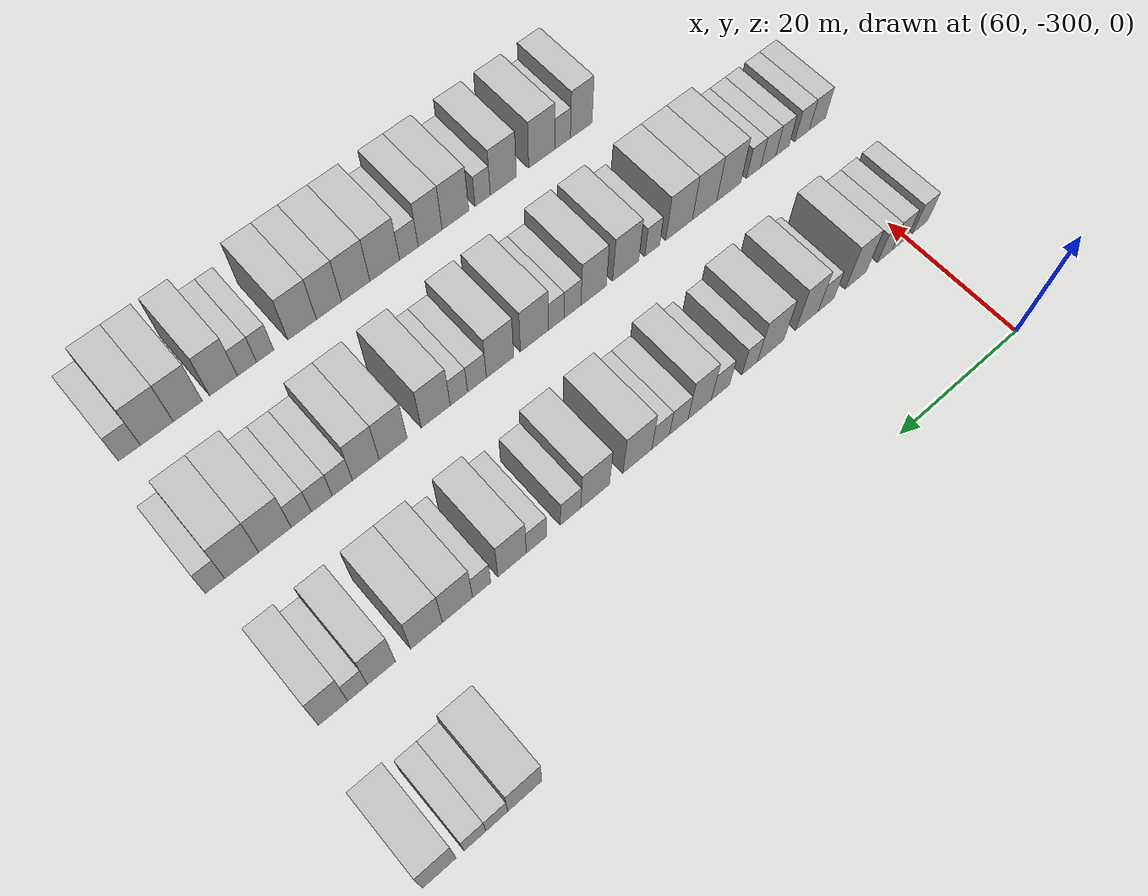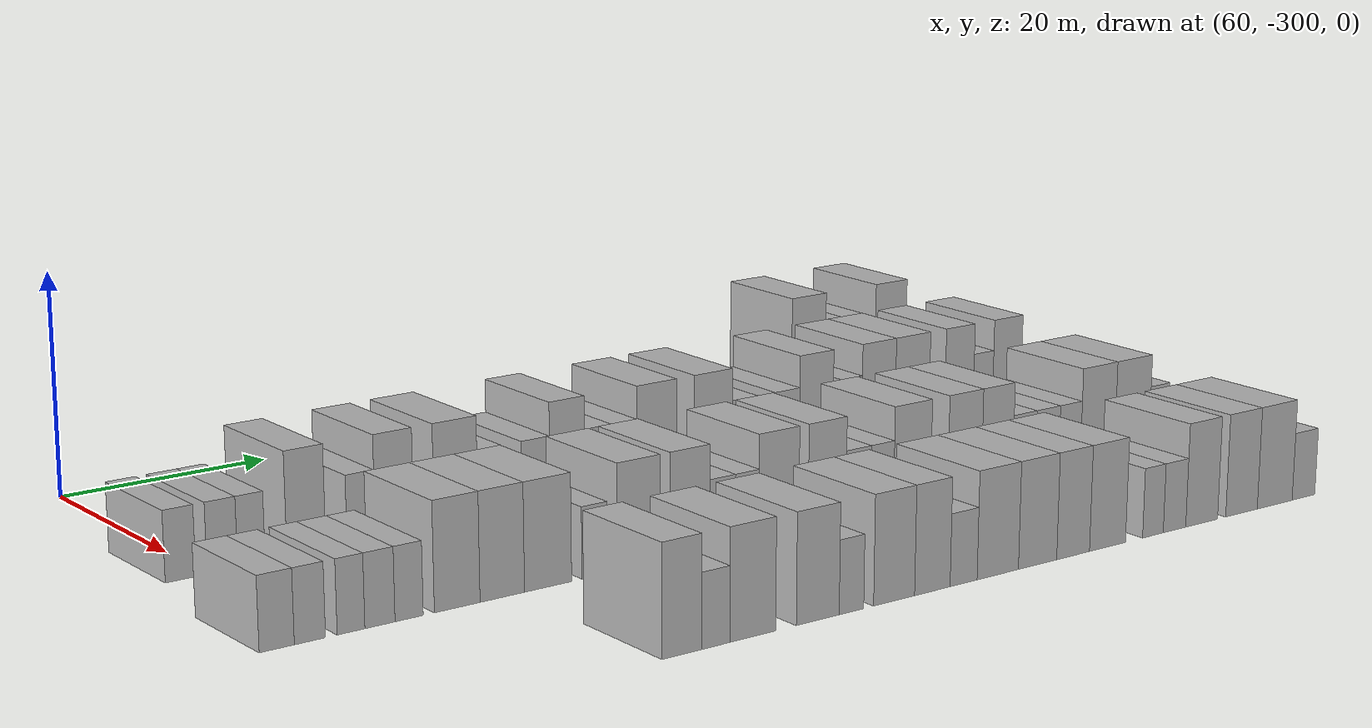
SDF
<sdf version="1.6">
 <world name="default">
  <model name="building_379">
   <static>1</static>
   <pose>63.0000 -222.6140 0 0.000000 0.000000 0.000000</pose>
   <link name="link">
    <pose>0 0 4.50 0 0 0</pose>
    <collision name="collision"><geometry><box><size>10.0000 4.3673 9.0000</size></box></geometry></collision>
    <visual name="visual">
     <cast_shadows>0</cast_shadows>
     <geometry><box><size>10.0000 4.3673 9.0000</size></box></geometry>
     <material>
      <script>
       <uri>model://HANNAS_wall/materials/scripts</uri>
       <uri>model://HANNAS_wall/materials/textures</uri>
       <name>vrc/HANNAS_wall</name>
      </script>
     </material>
    </visual>
   </link>
  </model>
  <model name="building_380">
   <static>1</static>
   <pose>63.0000 -219.0402 0 0.000000 0.000000 0.000000</pose>
   <link name="link">
    <pose>0 0 3.00 0 0 0</pose>
    <collision name="collision"><geometry><box><size>10.0000 2.7804 6.0000</size></box></geometry></collision>
    <visual name="visual">
     <cast_shadows>0</cast_shadows>
     <geometry><box><size>10.0000 2.7804 6.0000</size></box></geometry>
     <material>
      <script>
       <uri>model://HANNAS_wall/materials/scripts</uri>
       <uri>model://HANNAS_wall/materials/textures</uri>
       <name>vrc/HANNAS_wall</name>
      </script>
     </material>
    </visual>
   </link>
  </model>
  <model name="building_381">
   <static>1</static>
   <pose>63.0000 -216.2629 0 0.000000 0.000000 0.000000</pose>
   <link name="link">
    <pose>0 0 3.00 0 0 0</pose>
    <collision name="collision"><geometry><box><size>10.0000 2.7740 6.0000</size></box></geometry></collision>
    <visual name="visual">
     <cast_shadows>0</cast_shadows>
     <geometry><box><size>10.0000 2.7740 6.0000</size></box></geometry>
     <material>
      <script>
       <uri>model://HANNAS_wall/materials/scripts</uri>
       <uri>model://HANNAS_wall/materials/textures</uri>
       <name>vrc/HANNAS_wall</name>
      </script>
     </material>
    </visual>
   </link>
  </model>
  <model name="building_382">
   <static>1</static>
   <pose>63.0000 -211.8053 0 0.000000 0.000000 0.000000</pose>
   <link name="link">
    <pose>0 0 4.50 0 0 0</pose>
    <collision name="collision"><geometry><box><size>10.0000 4.1413 9.0000</size></box></geometry></collision>
    <visual name="visual">
     <cast_shadows>0</cast_shadows>
     <geometry><box><size>10.0000 4.1413 9.0000</size></box></geometry>
     <material>
      <script>
       <uri>model://HANNAS_wall/materials/scripts</uri>
       <uri>model://HANNAS_wall/materials/textures</uri>
       <name>vrc/HANNAS_wall</name>
      </script>
     </material>
    </visual>
   </link>
  </model>
  <model name="building_542">
   <static>1</static>
   <pose>82.0000 -302.3694 0 0.000000 0.000000 0.000000</pose>
   <link name="link">
    <pose>0 0 3.00 0 0 0</pose>
    <collision name="collision"><geometry><box><size>10.0000 2.7032 6.0000</size></box></geometry></collision>
    <visual name="visual">
     <cast_shadows>0</cast_shadows>
     <geometry><box><size>10.0000 2.7032 6.0000</size></box></geometry>
     <material>
      <script>
       <uri>model://HANNAS_wall/materials/scripts</uri>
       <uri>model://HANNAS_wall/materials/textures</uri>
       <name>vrc/HANNAS_wall</name>
      </script>
     </material>
    </visual>
   </link>
  </model>
  <model name="building_543">
   <static>1</static>
   <pose>82.0000 -298.6455 0 0.000000 0.000000 0.000000</pose>
   <link name="link">
    <pose>0 0 3.00 0 0 0</pose>
    <collision name="collision"><geometry><box><size>10.0000 2.7447 6.0000</size></box></geometry></collision>
    <visual name="visual">
     <cast_shadows>0</cast_shadows>
     <geometry><box><size>10.0000 2.7447 6.0000</size></box></geometry>
     <material>
      <script>
       <uri>model://HANNAS_wall/materials/scripts</uri>
       <uri>model://HANNAS_wall/materials/textures</uri>
       <name>vrc/HANNAS_wall</name>
      </script>
     </material>
    </visual>
   </link>
  </model>
  <model name="building_544">
   <static>1</static>
   <pose>82.0000 -296.0211 0 0.000000 0.000000 0.000000</pose>
   <link name="link">
    <pose>0 0 3.00 0 0 0</pose>
    <collision name="collision"><geometry><box><size>10.0000 2.5041 6.0000</size></box></geometry></collision>
    <visual name="visual">
     <cast_shadows>0</cast_shadows>
     <geometry><box><size>10.0000 2.5041 6.0000</size></box></geometry>
     <material>
      <script>
       <uri>model://HANNAS_wall/materials/scripts</uri>
       <uri>model://HANNAS_wall/materials/textures</uri>
       <name>vrc/HANNAS_wall</name>
      </script>
     </material>
    </visual>
   </link>
  </model>
  <model name="building_545">
   <static>1</static>
   <pose>82.0000 -290.9551 0 0.000000 0.000000 0.000000</pose>
   <link name="link">
    <pose>0 0 4.50 0 0 0</pose>
    <collision name="collision"><geometry><box><size>10.0000 3.6278 9.0000</size></box></geometry></collision>
    <visual name="visual">
     <cast_shadows>0</cast_shadows>
     <geometry><box><size>10.0000 3.6278 9.0000</size></box></geometry>
     <material>
      <script>
       <uri>model://HANNAS_wall/materials/scripts</uri>
       <uri>model://HANNAS_wall/materials/textures</uri>
       <name>vrc/HANNAS_wall</name>
      </script>
     </material>
    </visual>
   </link>
  </model>
  <model name="building_546">
   <static>1</static>
   <pose>82.0000 -285.7852 0 0.000000 0.000000 0.000000</pose>
   <link name="link">
    <pose>0 0 3.00 0 0 0</pose>
    <collision name="collision"><geometry><box><size>10.0000 2.7119 6.0000</size></box></geometry></collision>
    <visual name="visual">
     <cast_shadows>0</cast_shadows>
     <geometry><box><size>10.0000 2.7119 6.0000</size></box></geometry>
     <material>
      <script>
       <uri>model://HANNAS_wall/materials/scripts</uri>
       <uri>model://HANNAS_wall/materials/textures</uri>
       <name>vrc/HANNAS_wall</name>
      </script>
     </material>
    </visual>
   </link>
  </model>
  <model name="building_547">
   <static>1</static>
   <pose>82.0000 -282.5600 0 0.000000 0.000000 0.000000</pose>
   <link name="link">
    <pose>0 0 4.50 0 0 0</pose>
    <collision name="collision"><geometry><box><size>10.0000 3.7386 9.0000</size></box></geometry></collision>
    <visual name="visual">
     <cast_shadows>0</cast_shadows>
     <geometry><box><size>10.0000 3.7386 9.0000</size></box></geometry>
     <material>
      <script>
       <uri>model://HANNAS_wall/materials/scripts</uri>
       <uri>model://HANNAS_wall/materials/textures</uri>
       <name>vrc/HANNAS_wall</name>
      </script>
     </material>
    </visual>
   </link>
  </model>
  <model name="building_548">
   <static>1</static>
   <pose>82.0000 -276.5096 0 0.000000 0.000000 0.000000</pose>
   <link name="link">
    <pose>0 0 4.50 0 0 0</pose>
    <collision name="collision"><geometry><box><size>10.0000 4.3623 9.0000</size></box></geometry></collision>
    <visual name="visual">
     <cast_shadows>0</cast_shadows>
     <geometry><box><size>10.0000 4.3623 9.0000</size></box></geometry>
     <material>
      <script>
       <uri>model://HANNAS_wall/materials/scripts</uri>
       <uri>model://HANNAS_wall/materials/textures</uri>
       <name>vrc/HANNAS_wall</name>
      </script>
     </material>
    </visual>
   </link>
  </model>
  <model name="building_549">
   <static>1</static>
   <pose>82.0000 -273.0817 0 0.000000 0.000000 0.000000</pose>
   <link name="link">
    <pose>0 0 3.00 0 0 0</pose>
    <collision name="collision"><geometry><box><size>10.0000 2.4935 6.0000</size></box></geometry></collision>
    <visual name="visual">
     <cast_shadows>0</cast_shadows>
     <geometry><box><size>10.0000 2.4935 6.0000</size></box></geometry>
     <material>
      <script>
       <uri>model://HANNAS_wall/materials/scripts</uri>
       <uri>model://HANNAS_wall/materials/textures</uri>
       <name>vrc/HANNAS_wall</name>
      </script>
     </material>
    </visual>
   </link>
  </model>
  <model name="building_550">
   <static>1</static>
   <pose>82.0000 -268.3754 0 0.000000 0.000000 0.000000</pose>
   <link name="link">
    <pose>0 0 3.00 0 0 0</pose>
    <collision name="collision"><geometry><box><size>10.0000 2.9191 6.0000</size></box></geometry></collision>
    <visual name="visual">
     <cast_shadows>0</cast_shadows>
     <geometry><box><size>10.0000 2.9191 6.0000</size></box></geometry>
     <material>
      <script>
       <uri>model://HANNAS_wall/materials/scripts</uri>
       <uri>model://HANNAS_wall/materials/textures</uri>
       <name>vrc/HANNAS_wall</name>
      </script>
     </material>
    </visual>
   </link>
  </model>
  <model name="building_551">
   <static>1</static>
   <pose>82.0000 -265.0829 0 0.000000 0.000000 0.000000</pose>
   <link name="link">
    <pose>0 0 4.50 0 0 0</pose>
    <collision name="collision"><geometry><box><size>10.0000 3.6659 9.0000</size></box></geometry></collision>
    <visual name="visual">
     <cast_shadows>0</cast_shadows>
     <geometry><box><size>10.0000 3.6659 9.0000</size></box></geometry>
     <material>
      <script>
       <uri>model://HANNAS_wall/materials/scripts</uri>
       <uri>model://HANNAS_wall/materials/textures</uri>
       <name>vrc/HANNAS_wall</name>
      </script>
     </material>
    </visual>
   </link>
  </model>
  <model name="building_552">
   <static>1</static>
   <pose>82.0000 -261.8124 0 0.000000 0.000000 0.000000</pose>
   <link name="link">
    <pose>0 0 3.00 0 0 0</pose>
    <collision name="collision"><geometry><box><size>10.0000 2.8752 6.0000</size></box></geometry></collision>
    <visual name="visual">
     <cast_shadows>0</cast_shadows>
     <geometry><box><size>10.0000 2.8752 6.0000</size></box></geometry>
     <material>
      <script>
       <uri>model://HANNAS_wall/materials/scripts</uri>
       <uri>model://HANNAS_wall/materials/textures</uri>
       <name>vrc/HANNAS_wall</name>
      </script>
     </material>
    </visual>
   </link>
  </model>
  <model name="building_553">
   <static>1</static>
   <pose>82.0000 -259.0061 0 0.000000 0.000000 0.000000</pose>
   <link name="link">
    <pose>0 0 3.00 0 0 0</pose>
    <collision name="collision"><geometry><box><size>10.0000 2.7374 6.0000</size></box></geometry></collision>
    <visual name="visual">
     <cast_shadows>0</cast_shadows>
     <geometry><box><size>10.0000 2.7374 6.0000</size></box></geometry>
     <material>
      <script>
       <uri>model://HANNAS_wall/materials/scripts</uri>
       <uri>model://HANNAS_wall/materials/textures</uri>
       <name>vrc/HANNAS_wall</name>
      </script>
     </material>
    </visual>
   </link>
  </model>
  <model name="building_554">
   <static>1</static>
   <pose>82.0000 -255.4521 0 0.000000 0.000000 0.000000</pose>
   <link name="link">
    <pose>0 0 4.50 0 0 0</pose>
    <collision name="collision"><geometry><box><size>10.0000 4.3705 9.0000</size></box></geometry></collision>
    <visual name="visual">
     <cast_shadows>0</cast_shadows>
     <geometry><box><size>10.0000 4.3705 9.0000</size></box></geometry>
     <material>
      <script>
       <uri>model://HANNAS_wall/materials/scripts</uri>
       <uri>model://HANNAS_wall/materials/textures</uri>
       <name>vrc/HANNAS_wall</name>
      </script>
     </material>
    </visual>
   </link>
  </model>
  <model name="building_555">
   <static>1</static>
   <pose>82.0000 -249.1358 0 0.000000 0.000000 0.000000</pose>
   <link name="link">
    <pose>0 0 4.50 0 0 0</pose>
    <collision name="collision"><geometry><box><size>10.0000 4.2620 9.0000</size></box></geometry></collision>
    <visual name="visual">
     <cast_shadows>0</cast_shadows>
     <geometry><box><size>10.0000 4.2620 9.0000</size></box></geometry>
     <material>
      <script>
       <uri>model://HANNAS_wall/materials/scripts</uri>
       <uri>model://HANNAS_wall/materials/textures</uri>
       <name>vrc/HANNAS_wall</name>
      </script>
     </material>
    </visual>
   </link>
  </model>
  <model name="building_556">
   <static>1</static>
   <pose>82.0000 -245.5286 0 0.000000 0.000000 0.000000</pose>
   <link name="link">
    <pose>0 0 3.00 0 0 0</pose>
    <collision name="collision"><geometry><box><size>10.0000 2.9524 6.0000</size></box></geometry></collision>
    <visual name="visual">
     <cast_shadows>0</cast_shadows>
     <geometry><box><size>10.0000 2.9524 6.0000</size></box></geometry>
     <material>
      <script>
       <uri>model://HANNAS_wall/materials/scripts</uri>
       <uri>model://HANNAS_wall/materials/textures</uri>
       <name>vrc/HANNAS_wall</name>
      </script>
     </material>
    </visual>
   </link>
  </model>
  <model name="building_557">
   <static>1</static>
   <pose>82.0000 -240.6181 0 0.000000 0.000000 0.000000</pose>
   <link name="link">
    <pose>0 0 3.00 0 0 0</pose>
    <collision name="collision"><geometry><box><size>10.0000 2.8685 6.0000</size></box></geometry></collision>
    <visual name="visual">
     <cast_shadows>0</cast_shadows>
     <geometry><box><size>10.0000 2.8685 6.0000</size></box></geometry>
     <material>
      <script>
       <uri>model://HANNAS_wall/materials/scripts</uri>
       <uri>model://HANNAS_wall/materials/textures</uri>
       <name>vrc/HANNAS_wall</name>
      </script>
     </material>
    </visual>
   </link>
  </model>
  <model name="building_558">
   <static>1</static>
   <pose>82.0000 -237.1951 0 0.000000 0.000000 0.000000</pose>
   <link name="link">
    <pose>0 0 4.50 0 0 0</pose>
    <collision name="collision"><geometry><box><size>10.0000 3.9776 9.0000</size></box></geometry></collision>
    <visual name="visual">
     <cast_shadows>0</cast_shadows>
     <geometry><box><size>10.0000 3.9776 9.0000</size></box></geometry>
     <material>
      <script>
       <uri>model://HANNAS_wall/materials/scripts</uri>
       <uri>model://HANNAS_wall/materials/textures</uri>
       <name>vrc/HANNAS_wall</name>
      </script>
     </material>
    </visual>
   </link>
  </model>
  <model name="building_559">
   <static>1</static>
   <pose>82.0000 -232.9572 0 0.000000 0.000000 0.000000</pose>
   <link name="link">
    <pose>0 0 3.00 0 0 0</pose>
    <collision name="collision"><geometry><box><size>10.0000 2.4983 6.0000</size></box></geometry></collision>
    <visual name="visual">
     <cast_shadows>0</cast_shadows>
     <geometry><box><size>10.0000 2.4983 6.0000</size></box></geometry>
     <material>
      <script>
       <uri>model://HANNAS_wall/materials/scripts</uri>
       <uri>model://HANNAS_wall/materials/textures</uri>
       <name>vrc/HANNAS_wall</name>
      </script>
     </material>
    </visual>
   </link>
  </model>
  <model name="building_560">
   <static>1</static>
   <pose>82.0000 -229.6564 0 0.000000 0.000000 0.000000</pose>
   <link name="link">
    <pose>0 0 4.50 0 0 0</pose>
    <collision name="collision"><geometry><box><size>10.0000 4.1033 9.0000</size></box></geometry></collision>
    <visual name="visual">
     <cast_shadows>0</cast_shadows>
     <geometry><box><size>10.0000 4.1033 9.0000</size></box></geometry>
     <material>
      <script>
       <uri>model://HANNAS_wall/materials/scripts</uri>
       <uri>model://HANNAS_wall/materials/textures</uri>
       <name>vrc/HANNAS_wall</name>
      </script>
     </material>
    </visual>
   </link>
  </model>
  <model name="building_561">
   <static>1</static>
   <pose>82.0000 -225.4766 0 0.000000 0.000000 0.000000</pose>
   <link name="link">
    <pose>0 0 4.50 0 0 0</pose>
    <collision name="collision"><geometry><box><size>10.0000 4.2562 9.0000</size></box></geometry></collision>
    <visual name="visual">
     <cast_shadows>0</cast_shadows>
     <geometry><box><size>10.0000 4.2562 9.0000</size></box></geometry>
     <material>
      <script>
       <uri>model://HANNAS_wall/materials/scripts</uri>
       <uri>model://HANNAS_wall/materials/textures</uri>
       <name>vrc/HANNAS_wall</name>
      </script>
     </material>
    </visual>
   </link>
  </model>
  <model name="building_562">
   <static>1</static>
   <pose>82.0000 -219.5210 0 0.000000 0.000000 0.000000</pose>
   <link name="link">
    <pose>0 0 4.50 0 0 0</pose>
    <collision name="collision"><geometry><box><size>10.0000 3.6550 9.0000</size></box></geometry></collision>
    <visual name="visual">
     <cast_shadows>0</cast_shadows>
     <geometry><box><size>10.0000 3.6550 9.0000</size></box></geometry>
     <material>
      <script>
       <uri>model://HANNAS_wall/materials/scripts</uri>
       <uri>model://HANNAS_wall/materials/textures</uri>
       <name>vrc/HANNAS_wall</name>
      </script>
     </material>
    </visual>
   </link>
  </model>
  <model name="building_563">
   <static>1</static>
   <pose>82.0000 -216.4335 0 0.000000 0.000000 0.000000</pose>
   <link name="link">
    <pose>0 0 3.00 0 0 0</pose>
    <collision name="collision"><geometry><box><size>10.0000 2.5200 6.0000</size></box></geometry></collision>
    <visual name="visual">
     <cast_shadows>0</cast_shadows>
     <geometry><box><size>10.0000 2.5200 6.0000</size></box></geometry>
     <material>
      <script>
       <uri>model://HANNAS_wall/materials/scripts</uri>
       <uri>model://HANNAS_wall/materials/textures</uri>
       <name>vrc/HANNAS_wall</name>
      </script>
     </material>
    </visual>
   </link>
  </model>
  <model name="building_564">
   <static>1</static>
   <pose>82.0000 -213.3101 0 0.000000 0.000000 0.000000</pose>
   <link name="link">
    <pose>0 0 4.50 0 0 0</pose>
    <collision name="collision"><geometry><box><size>10.0000 3.7269 9.0000</size></box></geometry></collision>
    <visual name="visual">
     <cast_shadows>0</cast_shadows>
     <geometry><box><size>10.0000 3.7269 9.0000</size></box></geometry>
     <material>
      <script>
       <uri>model://HANNAS_wall/materials/scripts</uri>
       <uri>model://HANNAS_wall/materials/textures</uri>
       <name>vrc/HANNAS_wall</name>
      </script>
     </material>
    </visual>
   </link>
  </model>
  <model name="building_726">
   <static>1</static>
   <pose>101.0000 -304.2935 0 0.000000 0.000000 0.000000</pose>
   <link name="link">
    <pose>0 0 3.00 0 0 0</pose>
    <collision name="collision"><geometry><box><size>10.0000 2.9528 6.0000</size></box></geometry></collision>
    <visual name="visual">
     <cast_shadows>0</cast_shadows>
     <geometry><box><size>10.0000 2.9528 6.0000</size></box></geometry>
     <material>
      <script>
       <uri>model://HANNAS_wall/materials/scripts</uri>
       <uri>model://HANNAS_wall/materials/textures</uri>
       <name>vrc/HANNAS_wall</name>
      </script>
     </material>
    </visual>
   </link>
  </model>
  <model name="building_727">
   <static>1</static>
   <pose>101.0000 -301.4891 0 0.000000 0.000000 0.000000</pose>
   <link name="link">
    <pose>0 0 3.00 0 0 0</pose>
    <collision name="collision"><geometry><box><size>10.0000 2.6559 6.0000</size></box></geometry></collision>
    <visual name="visual">
     <cast_shadows>0</cast_shadows>
     <geometry><box><size>10.0000 2.6559 6.0000</size></box></geometry>
     <material>
      <script>
       <uri>model://HANNAS_wall/materials/scripts</uri>
       <uri>model://HANNAS_wall/materials/textures</uri>
       <name>vrc/HANNAS_wall</name>
      </script>
     </material>
    </visual>
   </link>
  </model>
  <model name="building_728">
   <static>1</static>
   <pose>101.0000 -297.9579 0 0.000000 0.000000 0.000000</pose>
   <link name="link">
    <pose>0 0 3.00 0 0 0</pose>
    <collision name="collision"><geometry><box><size>10.0000 2.4065 6.0000</size></box></geometry></collision>
    <visual name="visual">
     <cast_shadows>0</cast_shadows>
     <geometry><box><size>10.0000 2.4065 6.0000</size></box></geometry>
     <material>
      <script>
       <uri>model://HANNAS_wall/materials/scripts</uri>
       <uri>model://HANNAS_wall/materials/textures</uri>
       <name>vrc/HANNAS_wall</name>
      </script>
     </material>
    </visual>
   </link>
  </model>
  <model name="building_729">
   <static>1</static>
   <pose>101.0000 -295.4297 0 0.000000 0.000000 0.000000</pose>
   <link name="link">
    <pose>0 0 3.00 0 0 0</pose>
    <collision name="collision"><geometry><box><size>10.0000 2.6500 6.0000</size></box></geometry></collision>
    <visual name="visual">
     <cast_shadows>0</cast_shadows>
     <geometry><box><size>10.0000 2.6500 6.0000</size></box></geometry>
     <material>
      <script>
       <uri>model://HANNAS_wall/materials/scripts</uri>
       <uri>model://HANNAS_wall/materials/textures</uri>
       <name>vrc/HANNAS_wall</name>
      </script>
     </material>
    </visual>
   </link>
  </model>
  <model name="building_730">
   <static>1</static>
   <pose>101.0000 -292.8492 0 0.000000 0.000000 0.000000</pose>
   <link name="link">
    <pose>0 0 3.00 0 0 0</pose>
    <collision name="collision"><geometry><box><size>10.0000 2.5109 6.0000</size></box></geometry></collision>
    <visual name="visual">
     <cast_shadows>0</cast_shadows>
     <geometry><box><size>10.0000 2.5109 6.0000</size></box></geometry>
     <material>
      <script>
       <uri>model://HANNAS_wall/materials/scripts</uri>
       <uri>model://HANNAS_wall/materials/textures</uri>
       <name>vrc/HANNAS_wall</name>
      </script>
     </material>
    </visual>
   </link>
  </model>
  <model name="building_731">
   <static>1</static>
   <pose>101.0000 -288.5113 0 0.000000 0.000000 0.000000</pose>
   <link name="link">
    <pose>0 0 4.50 0 0 0</pose>
    <collision name="collision"><geometry><box><size>10.0000 4.1648 9.0000</size></box></geometry></collision>
    <visual name="visual">
     <cast_shadows>0</cast_shadows>
     <geometry><box><size>10.0000 4.1648 9.0000</size></box></geometry>
     <material>
      <script>
       <uri>model://HANNAS_wall/materials/scripts</uri>
       <uri>model://HANNAS_wall/materials/textures</uri>
       <name>vrc/HANNAS_wall</name>
      </script>
     </material>
    </visual>
   </link>
  </model>
  <model name="building_732">
   <static>1</static>
   <pose>101.0000 -284.3563 0 0.000000 0.000000 0.000000</pose>
   <link name="link">
    <pose>0 0 4.50 0 0 0</pose>
    <collision name="collision"><geometry><box><size>10.0000 4.1453 9.0000</size></box></geometry></collision>
    <visual name="visual">
     <cast_shadows>0</cast_shadows>
     <geometry><box><size>10.0000 4.1453 9.0000</size></box></geometry>
     <material>
      <script>
       <uri>model://HANNAS_wall/materials/scripts</uri>
       <uri>model://HANNAS_wall/materials/textures</uri>
       <name>vrc/HANNAS_wall</name>
      </script>
     </material>
    </visual>
   </link>
  </model>
  <model name="building_733">
   <static>1</static>
   <pose>101.0000 -280.0426 0 0.000000 0.000000 0.000000</pose>
   <link name="link">
    <pose>0 0 4.50 0 0 0</pose>
    <collision name="collision"><geometry><box><size>10.0000 4.4819 9.0000</size></box></geometry></collision>
    <visual name="visual">
     <cast_shadows>0</cast_shadows>
     <geometry><box><size>10.0000 4.4819 9.0000</size></box></geometry>
     <material>
      <script>
       <uri>model://HANNAS_wall/materials/scripts</uri>
       <uri>model://HANNAS_wall/materials/textures</uri>
       <name>vrc/HANNAS_wall</name>
      </script>
     </material>
    </visual>
   </link>
  </model>
  <model name="building_734">
   <static>1</static>
   <pose>101.0000 -275.5691 0 0.000000 0.000000 0.000000</pose>
   <link name="link">
    <pose>0 0 3.00 0 0 0</pose>
    <collision name="collision"><geometry><box><size>10.0000 2.4652 6.0000</size></box></geometry></collision>
    <visual name="visual">
     <cast_shadows>0</cast_shadows>
     <geometry><box><size>10.0000 2.4652 6.0000</size></box></geometry>
     <material>
      <script>
       <uri>model://HANNAS_wall/materials/scripts</uri>
       <uri>model://HANNAS_wall/materials/textures</uri>
       <name>vrc/HANNAS_wall</name>
      </script>
     </material>
    </visual>
   </link>
  </model>
  <model name="building_735">
   <static>1</static>
   <pose>101.0000 -271.2094 0 0.000000 0.000000 0.000000</pose>
   <link name="link">
    <pose>0 0 4.50 0 0 0</pose>
    <collision name="collision"><geometry><box><size>10.0000 4.2541 9.0000</size></box></geometry></collision>
    <visual name="visual">
     <cast_shadows>0</cast_shadows>
     <geometry><box><size>10.0000 4.2541 9.0000</size></box></geometry>
     <material>
      <script>
       <uri>model://HANNAS_wall/materials/scripts</uri>
       <uri>model://HANNAS_wall/materials/textures</uri>
       <name>vrc/HANNAS_wall</name>
      </script>
     </material>
    </visual>
   </link>
  </model>
  <model name="building_736">
   <static>1</static>
   <pose>101.0000 -266.0508 0 0.000000 0.000000 0.000000</pose>
   <link name="link">
    <pose>0 0 4.50 0 0 0</pose>
    <collision name="collision"><geometry><box><size>10.0000 4.0631 9.0000</size></box></geometry></collision>
    <visual name="visual">
     <cast_shadows>0</cast_shadows>
     <geometry><box><size>10.0000 4.0631 9.0000</size></box></geometry>
     <material>
      <script>
       <uri>model://HANNAS_wall/materials/scripts</uri>
       <uri>model://HANNAS_wall/materials/textures</uri>
       <name>vrc/HANNAS_wall</name>
      </script>
     </material>
    </visual>
   </link>
  </model>
  <model name="building_737">
   <static>1</static>
   <pose>101.0000 -262.7074 0 0.000000 0.000000 0.000000</pose>
   <link name="link">
    <pose>0 0 3.00 0 0 0</pose>
    <collision name="collision"><geometry><box><size>10.0000 2.6238 6.0000</size></box></geometry></collision>
    <visual name="visual">
     <cast_shadows>0</cast_shadows>
     <geometry><box><size>10.0000 2.6238 6.0000</size></box></geometry>
     <material>
      <script>
       <uri>model://HANNAS_wall/materials/scripts</uri>
       <uri>model://HANNAS_wall/materials/textures</uri>
       <name>vrc/HANNAS_wall</name>
      </script>
     </material>
    </visual>
   </link>
  </model>
  <model name="building_738">
   <static>1</static>
   <pose>101.0000 -260.1505 0 0.000000 0.000000 0.000000</pose>
   <link name="link">
    <pose>0 0 3.00 0 0 0</pose>
    <collision name="collision"><geometry><box><size>10.0000 2.4899 6.0000</size></box></geometry></collision>
    <visual name="visual">
     <cast_shadows>0</cast_shadows>
     <geometry><box><size>10.0000 2.4899 6.0000</size></box></geometry>
     <material>
      <script>
       <uri>model://HANNAS_wall/materials/scripts</uri>
       <uri>model://HANNAS_wall/materials/textures</uri>
       <name>vrc/HANNAS_wall</name>
      </script>
     </material>
    </visual>
   </link>
  </model>
  <model name="building_739">
   <static>1</static>
   <pose>101.0000 -256.7756 0 0.000000 0.000000 0.000000</pose>
   <link name="link">
    <pose>0 0 4.50 0 0 0</pose>
    <collision name="collision"><geometry><box><size>10.0000 4.2599 9.0000</size></box></geometry></collision>
    <visual name="visual">
     <cast_shadows>0</cast_shadows>
     <geometry><box><size>10.0000 4.2599 9.0000</size></box></geometry>
     <material>
      <script>
       <uri>model://HANNAS_wall/materials/scripts</uri>
       <uri>model://HANNAS_wall/materials/textures</uri>
       <name>vrc/HANNAS_wall</name>
      </script>
     </material>
    </visual>
   </link>
  </model>
  <model name="building_740">
   <static>1</static>
   <pose>101.0000 -251.5797 0 0.000000 0.000000 0.000000</pose>
   <link name="link">
    <pose>0 0 4.50 0 0 0</pose>
    <collision name="collision"><geometry><box><size>10.0000 4.1319 9.0000</size></box></geometry></collision>
    <visual name="visual">
     <cast_shadows>0</cast_shadows>
     <geometry><box><size>10.0000 4.1319 9.0000</size></box></geometry>
     <material>
      <script>
       <uri>model://HANNAS_wall/materials/scripts</uri>
       <uri>model://HANNAS_wall/materials/textures</uri>
       <name>vrc/HANNAS_wall</name>
      </script>
     </material>
    </visual>
   </link>
  </model>
  <model name="building_741">
   <static>1</static>
   <pose>101.0000 -248.1222 0 0.000000 0.000000 0.000000</pose>
   <link name="link">
    <pose>0 0 3.00 0 0 0</pose>
    <collision name="collision"><geometry><box><size>10.0000 2.7830 6.0000</size></box></geometry></collision>
    <visual name="visual">
     <cast_shadows>0</cast_shadows>
     <geometry><box><size>10.0000 2.7830 6.0000</size></box></geometry>
     <material>
      <script>
       <uri>model://HANNAS_wall/materials/scripts</uri>
       <uri>model://HANNAS_wall/materials/textures</uri>
       <name>vrc/HANNAS_wall</name>
      </script>
     </material>
    </visual>
   </link>
  </model>
  <model name="building_742">
   <static>1</static>
   <pose>101.0000 -245.4556 0 0.000000 0.000000 0.000000</pose>
   <link name="link">
    <pose>0 0 3.00 0 0 0</pose>
    <collision name="collision"><geometry><box><size>10.0000 2.5503 6.0000</size></box></geometry></collision>
    <visual name="visual">
     <cast_shadows>0</cast_shadows>
     <geometry><box><size>10.0000 2.5503 6.0000</size></box></geometry>
     <material>
      <script>
       <uri>model://HANNAS_wall/materials/scripts</uri>
       <uri>model://HANNAS_wall/materials/textures</uri>
       <name>vrc/HANNAS_wall</name>
      </script>
     </material>
    </visual>
   </link>
  </model>
  <model name="building_743">
   <static>1</static>
   <pose>101.0000 -242.0696 0 0.000000 0.000000 0.000000</pose>
   <link name="link">
    <pose>0 0 4.50 0 0 0</pose>
    <collision name="collision"><geometry><box><size>10.0000 4.2217 9.0000</size></box></geometry></collision>
    <visual name="visual">
     <cast_shadows>0</cast_shadows>
     <geometry><box><size>10.0000 4.2217 9.0000</size></box></geometry>
     <material>
      <script>
       <uri>model://HANNAS_wall/materials/scripts</uri>
       <uri>model://HANNAS_wall/materials/textures</uri>
       <name>vrc/HANNAS_wall</name>
      </script>
     </material>
    </visual>
   </link>
  </model>
  <model name="building_744">
   <static>1</static>
   <pose>101.0000 -235.9848 0 0.000000 0.000000 0.000000</pose>
   <link name="link">
    <pose>0 0 4.50 0 0 0</pose>
    <collision name="collision"><geometry><box><size>10.0000 3.9479 9.0000</size></box></geometry></collision>
    <visual name="visual">
     <cast_shadows>0</cast_shadows>
     <geometry><box><size>10.0000 3.9479 9.0000</size></box></geometry>
     <material>
      <script>
       <uri>model://HANNAS_wall/materials/scripts</uri>
       <uri>model://HANNAS_wall/materials/textures</uri>
       <name>vrc/HANNAS_wall</name>
      </script>
     </material>
    </visual>
   </link>
  </model>
  <model name="building_745">
   <static>1</static>
   <pose>101.0000 -232.1405 0 0.000000 0.000000 0.000000</pose>
   <link name="link">
    <pose>0 0 4.50 0 0 0</pose>
    <collision name="collision"><geometry><box><size>10.0000 3.7407 9.0000</size></box></geometry></collision>
    <visual name="visual">
     <cast_shadows>0</cast_shadows>
     <geometry><box><size>10.0000 3.7407 9.0000</size></box></geometry>
     <material>
      <script>
       <uri>model://HANNAS_wall/materials/scripts</uri>
       <uri>model://HANNAS_wall/materials/textures</uri>
       <name>vrc/HANNAS_wall</name>
      </script>
     </material>
    </visual>
   </link>
  </model>
  <model name="building_746">
   <static>1</static>
   <pose>101.0000 -228.8772 0 0.000000 0.000000 0.000000</pose>
   <link name="link">
    <pose>0 0 3.00 0 0 0</pose>
    <collision name="collision"><geometry><box><size>10.0000 2.7860 6.0000</size></box></geometry></collision>
    <visual name="visual">
     <cast_shadows>0</cast_shadows>
     <geometry><box><size>10.0000 2.7860 6.0000</size></box></geometry>
     <material>
      <script>
       <uri>model://HANNAS_wall/materials/scripts</uri>
       <uri>model://HANNAS_wall/materials/textures</uri>
       <name>vrc/HANNAS_wall</name>
      </script>
     </material>
    </visual>
   </link>
  </model>
  <model name="building_747">
   <static>1</static>
   <pose>101.0000 -226.0594 0 0.000000 0.000000 0.000000</pose>
   <link name="link">
    <pose>0 0 3.00 0 0 0</pose>
    <collision name="collision"><geometry><box><size>10.0000 2.8496 6.0000</size></box></geometry></collision>
    <visual name="visual">
     <cast_shadows>0</cast_shadows>
     <geometry><box><size>10.0000 2.8496 6.0000</size></box></geometry>
     <material>
      <script>
       <uri>model://HANNAS_wall/materials/scripts</uri>
       <uri>model://HANNAS_wall/materials/textures</uri>
       <name>vrc/HANNAS_wall</name>
      </script>
     </material>
    </visual>
   </link>
  </model>
  <model name="building_748">
   <static>1</static>
   <pose>101.0000 -223.2838 0 0.000000 0.000000 0.000000</pose>
   <link name="link">
    <pose>0 0 3.00 0 0 0</pose>
    <collision name="collision"><geometry><box><size>10.0000 2.7018 6.0000</size></box></geometry></collision>
    <visual name="visual">
     <cast_shadows>0</cast_shadows>
     <geometry><box><size>10.0000 2.7018 6.0000</size></box></geometry>
     <material>
      <script>
       <uri>model://HANNAS_wall/materials/scripts</uri>
       <uri>model://HANNAS_wall/materials/textures</uri>
       <name>vrc/HANNAS_wall</name>
      </script>
     </material>
    </visual>
   </link>
  </model>
  <model name="building_749">
   <static>1</static>
   <pose>101.0000 -219.7805 0 0.000000 0.000000 0.000000</pose>
   <link name="link">
    <pose>0 0 4.50 0 0 0</pose>
    <collision name="collision"><geometry><box><size>10.0000 4.3047 9.0000</size></box></geometry></collision>
    <visual name="visual">
     <cast_shadows>0</cast_shadows>
     <geometry><box><size>10.0000 4.3047 9.0000</size></box></geometry>
     <material>
      <script>
       <uri>model://HANNAS_wall/materials/scripts</uri>
       <uri>model://HANNAS_wall/materials/textures</uri>
       <name>vrc/HANNAS_wall</name>
      </script>
     </material>
    </visual>
   </link>
  </model>
  <model name="building_750">
   <static>1</static>
   <pose>101.0000 -215.4137 0 0.000000 0.000000 0.000000</pose>
   <link name="link">
    <pose>0 0 4.50 0 0 0</pose>
    <collision name="collision"><geometry><box><size>10.0000 4.4289 9.0000</size></box></geometry></collision>
    <visual name="visual">
     <cast_shadows>0</cast_shadows>
     <geometry><box><size>10.0000 4.4289 9.0000</size></box></geometry>
     <material>
      <script>
       <uri>model://HANNAS_wall/materials/scripts</uri>
       <uri>model://HANNAS_wall/materials/textures</uri>
       <name>vrc/HANNAS_wall</name>
      </script>
     </material>
    </visual>
   </link>
  </model>
  <model name="building_751">
   <static>1</static>
   <pose>101.0000 -211.9528 0 0.000000 0.000000 0.000000</pose>
   <link name="link">
    <pose>0 0 3.00 0 0 0</pose>
    <collision name="collision"><geometry><box><size>10.0000 2.4931 6.0000</size></box></geometry></collision>
    <visual name="visual">
     <cast_shadows>0</cast_shadows>
     <geometry><box><size>10.0000 2.4931 6.0000</size></box></geometry>
     <material>
      <script>
       <uri>model://HANNAS_wall/materials/scripts</uri>
       <uri>model://HANNAS_wall/materials/textures</uri>
       <name>vrc/HANNAS_wall</name>
      </script>
     </material>
    </visual>
   </link>
  </model>
  <model name="building_911">
   <static>1</static>
   <pose>120.0000 -281.0801 0 0.000000 0.000000 0.000000</pose>
   <link name="link">
    <pose>0 0 4.50 0 0 0</pose>
    <collision name="collision"><geometry><box><size>10.0000 3.6562 9.0000</size></box></geometry></collision>
    <visual name="visual">
     <cast_shadows>0</cast_shadows>
     <geometry><box><size>10.0000 3.6562 9.0000</size></box></geometry>
     <material>
      <script>
       <uri>model://HANNAS_wall/materials/scripts</uri>
       <uri>model://HANNAS_wall/materials/textures</uri>
       <name>vrc/HANNAS_wall</name>
      </script>
     </material>
    </visual>
   </link>
  </model>
  <model name="building_912">
   <static>1</static>
   <pose>120.0000 -277.9399 0 0.000000 0.000000 0.000000</pose>
   <link name="link">
    <pose>0 0 3.00 0 0 0</pose>
    <collision name="collision"><geometry><box><size>10.0000 2.6242 6.0000</size></box></geometry></collision>
    <visual name="visual">
     <cast_shadows>0</cast_shadows>
     <geometry><box><size>10.0000 2.6242 6.0000</size></box></geometry>
     <material>
      <script>
       <uri>model://HANNAS_wall/materials/scripts</uri>
       <uri>model://HANNAS_wall/materials/textures</uri>
       <name>vrc/HANNAS_wall</name>
      </script>
     </material>
    </visual>
   </link>
  </model>
  <model name="building_913">
   <static>1</static>
   <pose>120.0000 -274.4539 0 0.000000 0.000000 0.000000</pose>
   <link name="link">
    <pose>0 0 4.50 0 0 0</pose>
    <collision name="collision"><geometry><box><size>10.0000 4.3477 9.0000</size></box></geometry></collision>
    <visual name="visual">
     <cast_shadows>0</cast_shadows>
     <geometry><box><size>10.0000 4.3477 9.0000</size></box></geometry>
     <material>
      <script>
       <uri>model://HANNAS_wall/materials/scripts</uri>
       <uri>model://HANNAS_wall/materials/textures</uri>
       <name>vrc/HANNAS_wall</name>
      </script>
     </material>
    </visual>
   </link>
  </model>
  <model name="building_914">
   <static>1</static>
   <pose>120.0000 -268.1715 0 0.000000 0.000000 0.000000</pose>
   <link name="link">
    <pose>0 0 4.50 0 0 0</pose>
    <collision name="collision"><geometry><box><size>10.0000 4.2170 9.0000</size></box></geometry></collision>
    <visual name="visual">
     <cast_shadows>0</cast_shadows>
     <geometry><box><size>10.0000 4.2170 9.0000</size></box></geometry>
     <material>
      <script>
       <uri>model://HANNAS_wall/materials/scripts</uri>
       <uri>model://HANNAS_wall/materials/textures</uri>
       <name>vrc/HANNAS_wall</name>
      </script>
     </material>
    </visual>
   </link>
  </model>
  <model name="building_915">
   <static>1</static>
   <pose>120.0000 -264.8373 0 0.000000 0.000000 0.000000</pose>
   <link name="link">
    <pose>0 0 3.00 0 0 0</pose>
    <collision name="collision"><geometry><box><size>10.0000 2.4515 6.0000</size></box></geometry></collision>
    <visual name="visual">
     <cast_shadows>0</cast_shadows>
     <geometry><box><size>10.0000 2.4515 6.0000</size></box></geometry>
     <material>
      <script>
       <uri>model://HANNAS_wall/materials/scripts</uri>
       <uri>model://HANNAS_wall/materials/textures</uri>
       <name>vrc/HANNAS_wall</name>
      </script>
     </material>
    </visual>
   </link>
  </model>
  <model name="building_916">
   <static>1</static>
   <pose>120.0000 -260.5146 0 0.000000 0.000000 0.000000</pose>
   <link name="link">
    <pose>0 0 4.50 0 0 0</pose>
    <collision name="collision"><geometry><box><size>10.0000 4.1938 9.0000</size></box></geometry></collision>
    <visual name="visual">
     <cast_shadows>0</cast_shadows>
     <geometry><box><size>10.0000 4.1938 9.0000</size></box></geometry>
     <material>
      <script>
       <uri>model://HANNAS_wall/materials/scripts</uri>
       <uri>model://HANNAS_wall/materials/textures</uri>
       <name>vrc/HANNAS_wall</name>
      </script>
     </material>
    </visual>
   </link>
  </model>
  <model name="building_917">
   <static>1</static>
   <pose>120.0000 -256.5625 0 0.000000 0.000000 0.000000</pose>
   <link name="link">
    <pose>0 0 4.50 0 0 0</pose>
    <collision name="collision"><geometry><box><size>10.0000 3.7105 9.0000</size></box></geometry></collision>
    <visual name="visual">
     <cast_shadows>0</cast_shadows>
     <geometry><box><size>10.0000 3.7105 9.0000</size></box></geometry>
     <material>
      <script>
       <uri>model://HANNAS_wall/materials/scripts</uri>
       <uri>model://HANNAS_wall/materials/textures</uri>
       <name>vrc/HANNAS_wall</name>
      </script>
     </material>
    </visual>
   </link>
  </model>
  <model name="building_918">
   <static>1</static>
   <pose>120.0000 -253.2734 0 0.000000 0.000000 0.000000</pose>
   <link name="link">
    <pose>0 0 3.00 0 0 0</pose>
    <collision name="collision"><geometry><box><size>10.0000 2.8676 6.0000</size></box></geometry></collision>
    <visual name="visual">
     <cast_shadows>0</cast_shadows>
     <geometry><box><size>10.0000 2.8676 6.0000</size></box></geometry>
     <material>
      <script>
       <uri>model://HANNAS_wall/materials/scripts</uri>
       <uri>model://HANNAS_wall/materials/textures</uri>
       <name>vrc/HANNAS_wall</name>
      </script>
     </material>
    </visual>
   </link>
  </model>
  <model name="building_919">
   <static>1</static>
   <pose>120.0000 -249.6039 0 0.000000 0.000000 0.000000</pose>
   <link name="link">
    <pose>0 0 4.50 0 0 0</pose>
    <collision name="collision"><geometry><box><size>10.0000 4.4715 9.0000</size></box></geometry></collision>
    <visual name="visual">
     <cast_shadows>0</cast_shadows>
     <geometry><box><size>10.0000 4.4715 9.0000</size></box></geometry>
     <material>
      <script>
       <uri>model://HANNAS_wall/materials/scripts</uri>
       <uri>model://HANNAS_wall/materials/textures</uri>
       <name>vrc/HANNAS_wall</name>
      </script>
     </material>
    </visual>
   </link>
  </model>
  <model name="building_920">
   <static>1</static>
   <pose>120.0000 -245.2515 0 0.000000 0.000000 0.000000</pose>
   <link name="link">
    <pose>0 0 4.50 0 0 0</pose>
    <collision name="collision"><geometry><box><size>10.0000 4.2331 9.0000</size></box></geometry></collision>
    <visual name="visual">
     <cast_shadows>0</cast_shadows>
     <geometry><box><size>10.0000 4.2331 9.0000</size></box></geometry>
     <material>
      <script>
       <uri>model://HANNAS_wall/materials/scripts</uri>
       <uri>model://HANNAS_wall/materials/textures</uri>
       <name>vrc/HANNAS_wall</name>
      </script>
     </material>
    </visual>
   </link>
  </model>
  <model name="building_921">
   <static>1</static>
   <pose>120.0000 -241.2876 0 0.000000 0.000000 0.000000</pose>
   <link name="link">
    <pose>0 0 4.50 0 0 0</pose>
    <collision name="collision"><geometry><box><size>10.0000 3.6947 9.0000</size></box></geometry></collision>
    <visual name="visual">
     <cast_shadows>0</cast_shadows>
     <geometry><box><size>10.0000 3.6947 9.0000</size></box></geometry>
     <material>
      <script>
       <uri>model://HANNAS_wall/materials/scripts</uri>
       <uri>model://HANNAS_wall/materials/textures</uri>
       <name>vrc/HANNAS_wall</name>
      </script>
     </material>
    </visual>
   </link>
  </model>
  <model name="building_922">
   <static>1</static>
   <pose>120.0000 -237.3752 0 0.000000 0.000000 0.000000</pose>
   <link name="link">
    <pose>0 0 4.50 0 0 0</pose>
    <collision name="collision"><geometry><box><size>10.0000 4.1301 9.0000</size></box></geometry></collision>
    <visual name="visual">
     <cast_shadows>0</cast_shadows>
     <geometry><box><size>10.0000 4.1301 9.0000</size></box></geometry>
     <material>
      <script>
       <uri>model://HANNAS_wall/materials/scripts</uri>
       <uri>model://HANNAS_wall/materials/textures</uri>
       <name>vrc/HANNAS_wall</name>
      </script>
     </material>
    </visual>
   </link>
  </model>
  <model name="building_923">
   <static>1</static>
   <pose>120.0000 -232.0931 0 0.000000 0.000000 0.000000</pose>
   <link name="link">
    <pose>0 0 3.00 0 0 0</pose>
    <collision name="collision"><geometry><box><size>10.0000 2.4341 6.0000</size></box></geometry></collision>
    <visual name="visual">
     <cast_shadows>0</cast_shadows>
     <geometry><box><size>10.0000 2.4341 6.0000</size></box></geometry>
     <material>
      <script>
       <uri>model://HANNAS_wall/materials/scripts</uri>
       <uri>model://HANNAS_wall/materials/textures</uri>
       <name>vrc/HANNAS_wall</name>
      </script>
     </material>
    </visual>
   </link>
  </model>
  <model name="building_924">
   <static>1</static>
   <pose>120.0000 -229.5354 0 0.000000 0.000000 0.000000</pose>
   <link name="link">
    <pose>0 0 3.00 0 0 0</pose>
    <collision name="collision"><geometry><box><size>10.0000 2.6811 6.0000</size></box></geometry></collision>
    <visual name="visual">
     <cast_shadows>0</cast_shadows>
     <geometry><box><size>10.0000 2.6811 6.0000</size></box></geometry>
     <material>
      <script>
       <uri>model://HANNAS_wall/materials/scripts</uri>
       <uri>model://HANNAS_wall/materials/textures</uri>
       <name>vrc/HANNAS_wall</name>
      </script>
     </material>
    </visual>
   </link>
  </model>
  <model name="building_925">
   <static>1</static>
   <pose>120.0000 -226.2654 0 0.000000 0.000000 0.000000</pose>
   <link name="link">
    <pose>0 0 4.50 0 0 0</pose>
    <collision name="collision"><geometry><box><size>10.0000 3.8590 9.0000</size></box></geometry></collision>
    <visual name="visual">
     <cast_shadows>0</cast_shadows>
     <geometry><box><size>10.0000 3.8590 9.0000</size></box></geometry>
     <material>
      <script>
       <uri>model://HANNAS_wall/materials/scripts</uri>
       <uri>model://HANNAS_wall/materials/textures</uri>
       <name>vrc/HANNAS_wall</name>
      </script>
     </material>
    </visual>
   </link>
  </model>
  <model name="building_926">
   <static>1</static>
   <pose>120.0000 -221.3778 0 0.000000 0.000000 0.000000</pose>
   <link name="link">
    <pose>0 0 4.50 0 0 0</pose>
    <collision name="collision"><geometry><box><size>10.0000 3.9161 9.0000</size></box></geometry></collision>
    <visual name="visual">
     <cast_shadows>0</cast_shadows>
     <geometry><box><size>10.0000 3.9161 9.0000</size></box></geometry>
     <material>
      <script>
       <uri>model://HANNAS_wall/materials/scripts</uri>
       <uri>model://HANNAS_wall/materials/textures</uri>
       <name>vrc/HANNAS_wall</name>
      </script>
     </material>
    </visual>
   </link>
  </model>
  <model name="building_927">
   <static>1</static>
   <pose>120.0000 -217.2163 0 0.000000 0.000000 0.000000</pose>
   <link name="link">
    <pose>0 0 4.50 0 0 0</pose>
    <collision name="collision"><geometry><box><size>10.0000 4.4071 9.0000</size></box></geometry></collision>
    <visual name="visual">
     <cast_shadows>0</cast_shadows>
     <geometry><box><size>10.0000 4.4071 9.0000</size></box></geometry>
     <material>
      <script>
       <uri>model://HANNAS_wall/materials/scripts</uri>
       <uri>model://HANNAS_wall/materials/textures</uri>
       <name>vrc/HANNAS_wall</name>
      </script>
     </material>
    </visual>
   </link>
  </model>
  <model name="building_928">
   <static>1</static>
   <pose>120.0000 -213.5607 0 0.000000 0.000000 0.000000</pose>
   <link name="link">
    <pose>0 0 3.00 0 0 0</pose>
    <collision name="collision"><geometry><box><size>10.0000 2.9042 6.0000</size></box></geometry></collision>
    <visual name="visual">
     <cast_shadows>0</cast_shadows>
     <geometry><box><size>10.0000 2.9042 6.0000</size></box></geometry>
     <material>
      <script>
       <uri>model://HANNAS_wall/materials/scripts</uri>
       <uri>model://HANNAS_wall/materials/textures</uri>
       <name>vrc/HANNAS_wall</name>
      </script>
     </material>
    </visual>
   </link>
  </model>
 </world>
</sdf>
